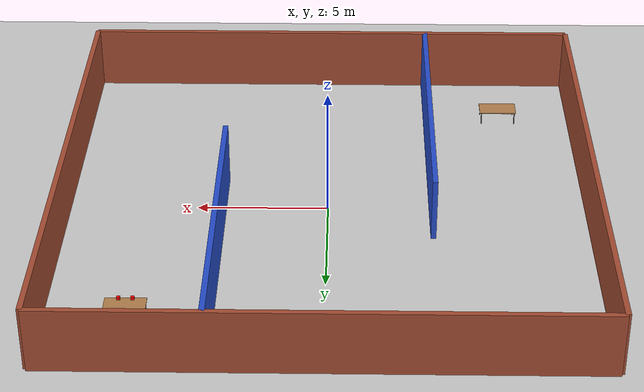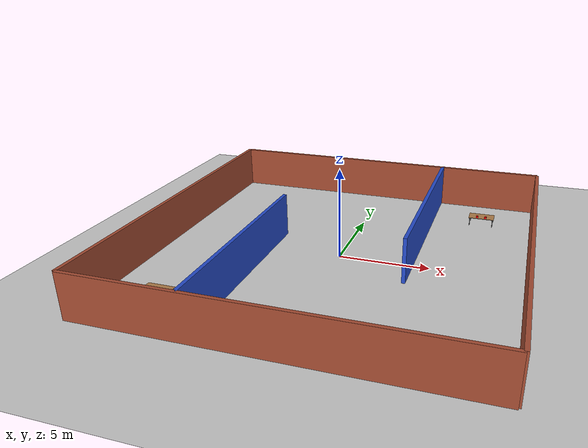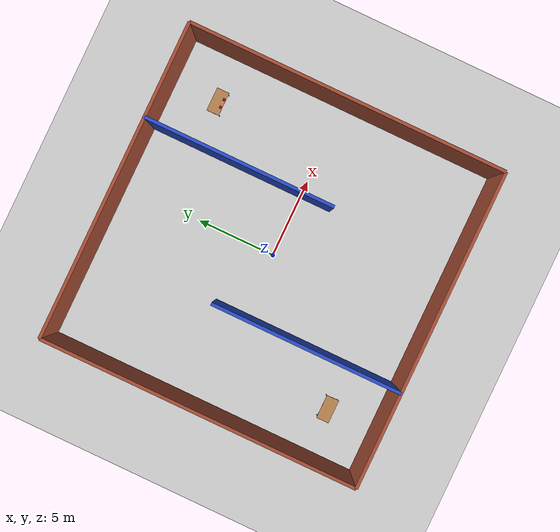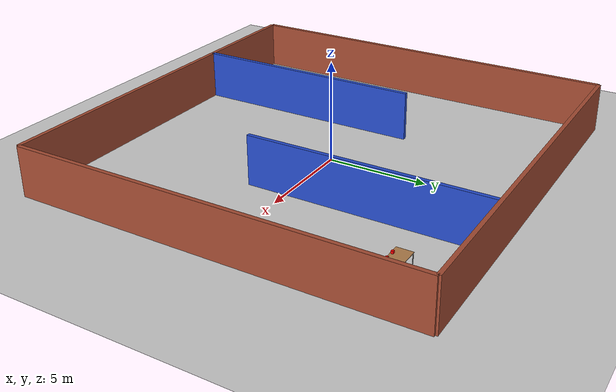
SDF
<sdf version="1.6">
 <world name="default">
  <light name="sun" type="directional">
   <pose>0 0 10 0 -0 0</pose>
   <diffuse>0.8 0.8 0.8 1</diffuse>
   <specular>0.2 0.2 0.2 1</specular>
   <attenuation>
    <range>1000</range>
    <constant>0.9</constant>
    <linear>0.01</linear>
    <quadratic>0.001</quadratic>
   </attenuation>
   <direction>-0.5 0.1 -0.9</direction>
  </light>
  <model name="ground_plane">
   <static>1</static>
   <link name="link">
    <collision name="collision">
     <geometry><plane><normal>0 0 1</normal><size>100 100</size></plane></geometry>
     <surface><friction><ode><mu>100</mu><mu2>50</mu2></ode></friction></surface>
    </collision>
    <visual name="visual">
     <cast_shadows>0</cast_shadows>
     <geometry><plane><normal>0 0 1</normal><size>100 100</size></plane></geometry>
     <material>
      <script><uri>file://media/materials/scripts/gazebo.material</uri><name>Gazebo/Grey</name></script>
     </material>
    </visual>
   </link>
  </model>
  <gravity>0 0 -9.8</gravity>
  <magnetic_field>6e-06 2.3e-05 -4.2e-05</magnetic_field>
  <atmosphere type="adiabatic"/>
  <physics name="default_physics" default="0" type="ode">
   <max_step_size>0.001</max_step_size>
   <real_time_factor>1</real_time_factor>
   <real_time_update_rate>1000</real_time_update_rate>
  </physics>
  <scene><ambient>0.4 0.4 0.4 1</ambient><background>0.7 0.7 0.7 1</background><shadows>1</shadows></scene>
  <spherical_coordinates>
   <surface_model>EARTH_WGS84</surface_model>
   <latitude_deg>0</latitude_deg>
   <longitude_deg>0</longitude_deg>
   <elevation>0</elevation>
   <heading_deg>0</heading_deg>
  </spherical_coordinates>
  <model name="inner_wall">
   <link name="Wall_1">
    <pose>-4 -4 0 0 0 -1.5707</pose>
    <inertial>
     <mass>1</mass>
     <inertia><ixx>1</ixx><ixy>0</ixy><ixz>0</ixz><iyy>1</iyy><iyz>0</iyz><izz>1</izz></inertia>
    </inertial>
    <visual name="Wall_1_Visual">
     <pose>0 0 1.25 0 -0 0</pose>
     <geometry><box><size>12 0.2 2.5</size></box></geometry>
     <material>
      <script><uri>file://media/materials/scripts/gazebo.material</uri><name>Gazebo/Blue</name></script>
      <ambient>0 0 1 1</ambient>
      <shader type="pixel"><normal_map>__default__</normal_map></shader>
      <emissive>0 0 0.2 1</emissive>
      <diffuse>0 0 0 1</diffuse>
      <specular>0.1 0.2 0 1</specular>
     </material>
     <meta><layer>0</layer></meta>
    </visual>
    <collision name="Wall_1_Collision">
     <pose>0 0 1.25 0 -0 0</pose>
     <geometry><box><size>12 0.2 2.5</size></box></geometry>
     <surface>
      <friction>
       <ode><mu>1</mu><mu2>1</mu2><fdir1>0 0 0</fdir1><slip1>0</slip1><slip2>0</slip2></ode>
       <torsional>
        <coefficient>1</coefficient>
        <patch_radius>0</patch_radius>
        <surface_radius>0</surface_radius>
        <use_patch_radius>1</use_patch_radius>
        <ode><slip>0</slip></ode>
       </torsional>
      </friction>
      <bounce><restitution_coefficient>0</restitution_coefficient><threshold>1e+06</threshold></bounce>
      <contact>
       <collide_without_contact>0</collide_without_contact>
       <collide_without_contact_bitmask>1</collide_without_contact_bitmask>
       <collide_bitmask>1</collide_bitmask>
       <ode>
        <soft_cfm>0</soft_cfm>
        <soft_erp>0.2</soft_erp>
        <kp>1e+13</kp>
        <kd>1</kd>
        <max_vel>0.01</max_vel>
        <min_depth>0</min_depth>
       </ode>
       <bullet>
        <split_impulse>1</split_impulse>
        <split_impulse_penetration_threshold>-0.01</split_impulse_penetration_threshold>
        <soft_cfm>0</soft_cfm>
        <soft_erp>0.2</soft_erp>
        <kp>1e+13</kp>
        <kd>1</kd>
       </bullet>
      </contact>
     </surface>
    </collision>
   </link>
   <link name="Wall_3">
    <pose>4 4 0 0 -0 1.5707</pose>
    <inertial>
     <mass>1</mass>
     <inertia><ixx>1</ixx><ixy>0</ixy><ixz>0</ixz><iyy>1</iyy><iyz>0</iyz><izz>1</izz></inertia>
    </inertial>
    <visual name="Wall_3_Visual">
     <pose>0 0 1.25 0 -0 0</pose>
     <geometry><box><size>12 0.2 2.5</size></box></geometry>
     <material>
      <script><uri>file://media/materials/scripts/gazebo.material</uri><name>Gazebo/Blue</name></script>
      <ambient>0 0 1 1</ambient>
      <shader type="pixel"><normal_map>__default__</normal_map></shader>
      <emissive>0 0 0.2 1</emissive>
      <diffuse>0 0 0 1</diffuse>
      <specular>0.1 0.2 0 1</specular>
     </material>
     <meta><layer>0</layer></meta>
    </visual>
    <collision name="Wall_3_Collision">
     <pose>0 0 1.25 0 -0 0</pose>
     <geometry><box><size>12 0.2 2.5</size></box></geometry>
     <surface>
      <friction>
       <ode><mu>1</mu><mu2>1</mu2><fdir1>0 0 0</fdir1><slip1>0</slip1><slip2>0</slip2></ode>
       <torsional>
        <coefficient>1</coefficient>
        <patch_radius>0</patch_radius>
        <surface_radius>0</surface_radius>
        <use_patch_radius>1</use_patch_radius>
        <ode><slip>0</slip></ode>
       </torsional>
      </friction>
      <bounce><restitution_coefficient>0</restitution_coefficient><threshold>1e+06</threshold></bounce>
      <contact>
       <collide_without_contact>0</collide_without_contact>
       <collide_without_contact_bitmask>1</collide_without_contact_bitmask>
       <collide_bitmask>1</collide_bitmask>
       <ode>
        <soft_cfm>0</soft_cfm>
        <soft_erp>0.2</soft_erp>
        <kp>1e+13</kp>
        <kd>1</kd>
        <max_vel>0.01</max_vel>
        <min_depth>0</min_depth>
       </ode>
       <bullet>
        <split_impulse>1</split_impulse>
        <split_impulse_penetration_threshold>-0.01</split_impulse_penetration_threshold>
        <soft_cfm>0</soft_cfm>
        <soft_erp>0.2</soft_erp>
        <kp>1e+13</kp>
        <kd>1</kd>
       </bullet>
      </contact>
     </surface>
    </collision>
   </link>
   <static>1</static>
  </model>
  <model name="cube_final">
   <link name="link">
    <inertial>
     <mass>1</mass>
     <inertia>
      <ixx>0.166667</ixx>
      <ixy>0</ixy>
      <ixz>0</ixz>
      <iyy>0.166667</iyy>
      <iyz>0</iyz>
      <izz>0.166667</izz>
     </inertia>
    </inertial>
    <visual name="visual">
     <geometry><box><size>0.12 0.12 0.12</size></box></geometry>
     <material>
      <script><name>Gazebo/Grey</name><uri>file://media/materials/scripts/gazebo.material</uri></script>
      <shader type="pixel"><normal_map>__default__</normal_map></shader>
      <ambient>1 0 0 1</ambient>
      <diffuse>0 0 0 1</diffuse>
      <specular>0.1 0.2 0 1</specular>
      <emissive>0 0 0 1</emissive>
     </material>
    </visual>
    <collision name="collision">
     <geometry><box><size>0.12 0.12 0.12</size></box></geometry>
     <surface>
      <friction>
       <ode><mu>1</mu><mu2>1</mu2><fdir1>0 0 0</fdir1><slip1>0</slip1><slip2>0</slip2></ode>
       <torsional>
        <coefficient>1</coefficient>
        <patch_radius>0</patch_radius>
        <surface_radius>0</surface_radius>
        <use_patch_radius>1</use_patch_radius>
        <ode><slip>0</slip></ode>
       </torsional>
      </friction>
      <bounce><restitution_coefficient>0</restitution_coefficient><threshold>1e+06</threshold></bounce>
      <contact>
       <collide_without_contact>0</collide_without_contact>
       <collide_without_contact_bitmask>1</collide_without_contact_bitmask>
       <collide_bitmask>1</collide_bitmask>
       <ode>
        <soft_cfm>0</soft_cfm>
        <soft_erp>0.2</soft_erp>
        <kp>1e+13</kp>
        <kd>1</kd>
        <max_vel>0.01</max_vel>
        <min_depth>0</min_depth>
       </ode>
       <bullet>
        <split_impulse>1</split_impulse>
        <split_impulse_penetration_threshold>-0.01</split_impulse_penetration_threshold>
        <soft_cfm>0</soft_cfm>
        <soft_erp>0.2</soft_erp>
        <kp>1e+13</kp>
        <kd>1</kd>
       </bullet>
      </contact>
     </surface>
    </collision>
   </link>
   <static>0</static>
   <pose>7.25 6.7 0.575 0 0 -7.3e-05</pose>
  </model>
  <model name="cube_final_0">
   <link name="link">
    <inertial>
     <mass>1</mass>
     <inertia>
      <ixx>0.166667</ixx>
      <ixy>0</ixy>
      <ixz>0</ixz>
      <iyy>0.166667</iyy>
      <iyz>0</iyz>
      <izz>0.166667</izz>
     </inertia>
    </inertial>
    <visual name="visual">
     <geometry><box><size>0.12 0.12 0.12</size></box></geometry>
     <material>
      <script><name>Gazebo/Grey</name><uri>file://media/materials/scripts/gazebo.material</uri></script>
      <shader type="pixel"><normal_map>__default__</normal_map></shader>
      <ambient>1 0 0 1</ambient>
      <diffuse>0 0 0 1</diffuse>
      <specular>0.1 0.2 0 1</specular>
      <emissive>0 0 0 1</emissive>
     </material>
    </visual>
    <collision name="collision">
     <geometry><box><size>0.12 0.12 0.12</size></box></geometry>
     <surface>
      <friction>
       <ode><mu>1</mu><mu2>1</mu2><fdir1>0 0 0</fdir1><slip1>0</slip1><slip2>0</slip2></ode>
       <torsional>
        <coefficient>1</coefficient>
        <patch_radius>0</patch_radius>
        <surface_radius>0</surface_radius>
        <use_patch_radius>1</use_patch_radius>
        <ode><slip>0</slip></ode>
       </torsional>
      </friction>
      <bounce><restitution_coefficient>0</restitution_coefficient><threshold>1e+06</threshold></bounce>
      <contact>
       <collide_without_contact>0</collide_without_contact>
       <collide_without_contact_bitmask>1</collide_without_contact_bitmask>
       <collide_bitmask>1</collide_bitmask>
       <ode>
        <soft_cfm>0</soft_cfm>
        <soft_erp>0.2</soft_erp>
        <kp>1e+13</kp>
        <kd>1</kd>
        <max_vel>0.01</max_vel>
        <min_depth>0</min_depth>
       </ode>
       <bullet>
        <split_impulse>1</split_impulse>
        <split_impulse_penetration_threshold>-0.01</split_impulse_penetration_threshold>
        <soft_cfm>0</soft_cfm>
        <soft_erp>0.2</soft_erp>
        <kp>1e+13</kp>
        <kd>1</kd>
       </bullet>
      </contact>
     </surface>
    </collision>
   </link>
   <static>0</static>
   <pose>6.75 6.7 0.575 0 -0 0.00012</pose>
  </model>
  <model name="table_final">
   <link name="link">
    <inertial>
     <mass>1</mass>
     <inertia><ixx>1</ixx><ixy>0</ixy><ixz>0</ixz><iyy>1</iyy><iyz>0</iyz><izz>1</izz></inertia>
    </inertial>
    <visual name="visual1">
     <pose>0 0 0.5 0 -0 0</pose>
     <geometry><box><size>1.5 0.8 0.03</size></box></geometry>
     <material>
      <script><uri>file://media/materials/scripts/gazebo.material</uri><name>Gazebo/Wood</name></script>
      <shader type="pixel"><normal_map>__default__</normal_map></shader>
      <ambient>1 1 1 1</ambient>
      <diffuse>1 1 1 1</diffuse>
      <specular>0.2 0.2 0.2 1</specular>
      <emissive>0 0 0 1</emissive>
     </material>
    </visual>
    <visual name="front_left_leg">
     <pose>0.68 0.38 0.25 0 -0 0</pose>
     <geometry><cylinder><radius>0.02</radius><length>0.5</length></cylinder></geometry>
     <material>
      <script><uri>file://media/materials/scripts/gazebo.material</uri><name>Gazebo/Grey</name></script>
      <shader type="pixel"><normal_map>__default__</normal_map></shader>
      <ambient>0.3 0.3 0.3 1</ambient>
      <diffuse>0.7 0.7 0.7 1</diffuse>
      <specular>0.01 0.01 0.01 1</specular>
      <emissive>0 0 0 1</emissive>
     </material>
    </visual>
    <visual name="front_right_leg">
     <pose>0.68 -0.38 0.25 0 -0 0</pose>
     <geometry><cylinder><radius>0.02</radius><length>0.5</length></cylinder></geometry>
     <material>
      <script><uri>file://media/materials/scripts/gazebo.material</uri><name>Gazebo/Grey</name></script>
      <shader type="pixel"><normal_map>__default__</normal_map></shader>
      <ambient>0.3 0.3 0.3 1</ambient>
      <diffuse>0.7 0.7 0.7 1</diffuse>
      <specular>0.01 0.01 0.01 1</specular>
      <emissive>0 0 0 1</emissive>
     </material>
    </visual>
    <visual name="back_right_leg">
     <pose>-0.68 -0.38 0.25 0 -0 0</pose>
     <geometry><cylinder><radius>0.02</radius><length>0.5</length></cylinder></geometry>
     <material>
      <script><uri>file://media/materials/scripts/gazebo.material</uri><name>Gazebo/Grey</name></script>
      <shader type="pixel"><normal_map>__default__</normal_map></shader>
      <ambient>0.3 0.3 0.3 1</ambient>
      <diffuse>0.7 0.7 0.7 1</diffuse>
      <specular>0.01 0.01 0.01 1</specular>
      <emissive>0 0 0 1</emissive>
     </material>
    </visual>
    <visual name="back_left_leg">
     <pose>-0.68 0.38 0.25 0 -0 0</pose>
     <geometry><cylinder><radius>0.02</radius><length>0.5</length></cylinder></geometry>
     <material>
      <script><uri>file://media/materials/scripts/gazebo.material</uri><name>Gazebo/Grey</name></script>
      <shader type="pixel"><normal_map>__default__</normal_map></shader>
      <ambient>0.3 0.3 0.3 1</ambient>
      <diffuse>0.7 0.7 0.7 1</diffuse>
      <specular>0.01 0.01 0.01 1</specular>
      <emissive>0 0 0 1</emissive>
     </material>
    </visual>
    <collision name="surface">
     <pose>0 0 0.5 0 -0 0</pose>
     <geometry><box><size>1.5 0.8 0.03</size></box></geometry>
     <surface>
      <friction>
       <ode><mu>0.6</mu><mu2>0.6</mu2><fdir1>0 0 0</fdir1><slip1>0</slip1><slip2>0</slip2></ode>
       <torsional>
        <coefficient>1</coefficient>
        <patch_radius>0</patch_radius>
        <surface_radius>0</surface_radius>
        <use_patch_radius>1</use_patch_radius>
        <ode><slip>0</slip></ode>
       </torsional>
      </friction>
      <bounce><restitution_coefficient>0</restitution_coefficient><threshold>1e+06</threshold></bounce>
      <contact>
       <collide_without_contact>0</collide_without_contact>
       <collide_without_contact_bitmask>1</collide_without_contact_bitmask>
       <collide_bitmask>1</collide_bitmask>
       <ode>
        <soft_cfm>0</soft_cfm>
        <soft_erp>0.2</soft_erp>
        <kp>1e+13</kp>
        <kd>1</kd>
        <max_vel>0.01</max_vel>
        <min_depth>0</min_depth>
       </ode>
       <bullet>
        <split_impulse>1</split_impulse>
        <split_impulse_penetration_threshold>-0.01</split_impulse_penetration_threshold>
        <soft_cfm>0</soft_cfm>
        <soft_erp>0.2</soft_erp>
        <kp>1e+13</kp>
        <kd>1</kd>
       </bullet>
      </contact>
     </surface>
    </collision>
    <collision name="front_left_leg">
     <pose>0.68 0.38 0.25 0 -0 0</pose>
     <geometry><cylinder><radius>0.02</radius><length>0.5</length></cylinder></geometry>
     <surface>
      <friction>
       <ode><mu>1</mu><mu2>1</mu2><fdir1>0 0 0</fdir1><slip1>0</slip1><slip2>0</slip2></ode>
       <torsional>
        <coefficient>1</coefficient>
        <patch_radius>0</patch_radius>
        <surface_radius>0</surface_radius>
        <use_patch_radius>1</use_patch_radius>
        <ode><slip>0</slip></ode>
       </torsional>
      </friction>
      <bounce><restitution_coefficient>0</restitution_coefficient><threshold>1e+06</threshold></bounce>
      <contact>
       <collide_without_contact>0</collide_without_contact>
       <collide_without_contact_bitmask>1</collide_without_contact_bitmask>
       <collide_bitmask>1</collide_bitmask>
       <ode>
        <soft_cfm>0</soft_cfm>
        <soft_erp>0.2</soft_erp>
        <kp>1e+13</kp>
        <kd>1</kd>
        <max_vel>0.01</max_vel>
        <min_depth>0</min_depth>
       </ode>
       <bullet>
        <split_impulse>1</split_impulse>
        <split_impulse_penetration_threshold>-0.01</split_impulse_penetration_threshold>
        <soft_cfm>0</soft_cfm>
        <soft_erp>0.2</soft_erp>
        <kp>1e+13</kp>
        <kd>1</kd>
       </bullet>
      </contact>
     </surface>
    </collision>
    <collision name="front_right_leg">
     <pose>0.68 -0.38 0.25 0 -0 0</pose>
     <geometry><cylinder><radius>0.02</radius><length>0.5</length></cylinder></geometry>
     <surface>
      <friction>
       <ode><mu>1</mu><mu2>1</mu2><fdir1>0 0 0</fdir1><slip1>0</slip1><slip2>0</slip2></ode>
       <torsional>
        <coefficient>1</coefficient>
        <patch_radius>0</patch_radius>
        <surface_radius>0</surface_radius>
        <use_patch_radius>1</use_patch_radius>
        <ode><slip>0</slip></ode>
       </torsional>
      </friction>
      <bounce><restitution_coefficient>0</restitution_coefficient><threshold>1e+06</threshold></bounce>
      <contact>
       <collide_without_contact>0</collide_without_contact>
       <collide_without_contact_bitmask>1</collide_without_contact_bitmask>
       <collide_bitmask>1</collide_bitmask>
       <ode>
        <soft_cfm>0</soft_cfm>
        <soft_erp>0.2</soft_erp>
        <kp>1e+13</kp>
        <kd>1</kd>
        <max_vel>0.01</max_vel>
        <min_depth>0</min_depth>
       </ode>
       <bullet>
        <split_impulse>1</split_impulse>
        <split_impulse_penetration_threshold>-0.01</split_impulse_penetration_threshold>
        <soft_cfm>0</soft_cfm>
        <soft_erp>0.2</soft_erp>
        <kp>1e+13</kp>
        <kd>1</kd>
       </bullet>
      </contact>
     </surface>
    </collision>
    <collision name="back_right_leg">
     <pose>-0.68 -0.38 0.25 0 -0 0</pose>
     <geometry><cylinder><radius>0.02</radius><length>0.5</length></cylinder></geometry>
     <surface>
      <friction>
       <ode><mu>1</mu><mu2>1</mu2><fdir1>0 0 0</fdir1><slip1>0</slip1><slip2>0</slip2></ode>
       <torsional>
        <coefficient>1</coefficient>
        <patch_radius>0</patch_radius>
        <surface_radius>0</surface_radius>
        <use_patch_radius>1</use_patch_radius>
        <ode><slip>0</slip></ode>
       </torsional>
      </friction>
      <bounce><restitution_coefficient>0</restitution_coefficient><threshold>1e+06</threshold></bounce>
      <contact>
       <collide_without_contact>0</collide_without_contact>
       <collide_without_contact_bitmask>1</collide_without_contact_bitmask>
       <collide_bitmask>1</collide_bitmask>
       <ode>
        <soft_cfm>0</soft_cfm>
        <soft_erp>0.2</soft_erp>
        <kp>1e+13</kp>
        <kd>1</kd>
        <max_vel>0.01</max_vel>
        <min_depth>0</min_depth>
       </ode>
       <bullet>
        <split_impulse>1</split_impulse>
        <split_impulse_penetration_threshold>-0.01</split_impulse_penetration_threshold>
        <soft_cfm>0</soft_cfm>
        <soft_erp>0.2</soft_erp>
        <kp>1e+13</kp>
        <kd>1</kd>
       </bullet>
      </contact>
     </surface>
    </collision>
    <collision name="back_left_leg">
     <pose>-0.68 0.38 0.25 0 -0 0</pose>
     <geometry><cylinder><radius>0.02</radius><length>0.5</length></cylinder></geometry>
     <surface>
      <friction>
       <ode><mu>1</mu><mu2>1</mu2><fdir1>0 0 0</fdir1><slip1>0</slip1><slip2>0</slip2></ode>
       <torsional>
        <coefficient>1</coefficient>
        <patch_radius>0</patch_radius>
        <surface_radius>0</surface_radius>
        <use_patch_radius>1</use_patch_radius>
        <ode><slip>0</slip></ode>
       </torsional>
      </friction>
      <bounce><restitution_coefficient>0</restitution_coefficient><threshold>1e+06</threshold></bounce>
      <contact>
       <collide_without_contact>0</collide_without_contact>
       <collide_without_contact_bitmask>1</collide_without_contact_bitmask>
       <collide_bitmask>1</collide_bitmask>
       <ode>
        <soft_cfm>0</soft_cfm>
        <soft_erp>0.2</soft_erp>
        <kp>1e+13</kp>
        <kd>1</kd>
        <max_vel>0.01</max_vel>
        <min_depth>0</min_depth>
       </ode>
       <bullet>
        <split_impulse>1</split_impulse>
        <split_impulse_penetration_threshold>-0.01</split_impulse_penetration_threshold>
        <soft_cfm>0</soft_cfm>
        <soft_erp>0.2</soft_erp>
        <kp>1e+13</kp>
        <kd>1</kd>
       </bullet>
      </contact>
     </surface>
    </collision>
   </link>
   <static>1</static>
   <pose>7 7 0 0 -0 0</pose>
  </model>
  <model name="table_final_0">
   <link name="link">
    <inertial>
     <mass>1</mass>
     <inertia><ixx>1</ixx><ixy>0</ixy><ixz>0</ixz><iyy>1</iyy><iyz>0</iyz><izz>1</izz></inertia>
    </inertial>
    <visual name="visual1">
     <pose>0 0 0.5 0 -0 0</pose>
     <geometry><box><size>1.5 0.8 0.03</size></box></geometry>
     <material>
      <script><uri>file://media/materials/scripts/gazebo.material</uri><name>Gazebo/Wood</name></script>
      <shader type="pixel"><normal_map>__default__</normal_map></shader>
      <ambient>1 1 1 1</ambient>
      <diffuse>1 1 1 1</diffuse>
      <specular>0.2 0.2 0.2 1</specular>
      <emissive>0 0 0 1</emissive>
     </material>
    </visual>
    <visual name="front_left_leg">
     <pose>0.68 0.38 0.25 0 -0 0</pose>
     <geometry><cylinder><radius>0.02</radius><length>0.5</length></cylinder></geometry>
     <material>
      <script><uri>file://media/materials/scripts/gazebo.material</uri><name>Gazebo/Grey</name></script>
      <shader type="pixel"><normal_map>__default__</normal_map></shader>
      <ambient>0.3 0.3 0.3 1</ambient>
      <diffuse>0.7 0.7 0.7 1</diffuse>
      <specular>0.01 0.01 0.01 1</specular>
      <emissive>0 0 0 1</emissive>
     </material>
    </visual>
    <visual name="front_right_leg">
     <pose>0.68 -0.38 0.25 0 -0 0</pose>
     <geometry><cylinder><radius>0.02</radius><length>0.5</length></cylinder></geometry>
     <material>
      <script><uri>file://media/materials/scripts/gazebo.material</uri><name>Gazebo/Grey</name></script>
      <shader type="pixel"><normal_map>__default__</normal_map></shader>
      <ambient>0.3 0.3 0.3 1</ambient>
      <diffuse>0.7 0.7 0.7 1</diffuse>
      <specular>0.01 0.01 0.01 1</specular>
      <emissive>0 0 0 1</emissive>
     </material>
    </visual>
    <visual name="back_right_leg">
     <pose>-0.68 -0.38 0.25 0 -0 0</pose>
     <geometry><cylinder><radius>0.02</radius><length>0.5</length></cylinder></geometry>
     <material>
      <script><uri>file://media/materials/scripts/gazebo.material</uri><name>Gazebo/Grey</name></script>
      <shader type="pixel"><normal_map>__default__</normal_map></shader>
      <ambient>0.3 0.3 0.3 1</ambient>
      <diffuse>0.7 0.7 0.7 1</diffuse>
      <specular>0.01 0.01 0.01 1</specular>
      <emissive>0 0 0 1</emissive>
     </material>
    </visual>
    <visual name="back_left_leg">
     <pose>-0.68 0.38 0.25 0 -0 0</pose>
     <geometry><cylinder><radius>0.02</radius><length>0.5</length></cylinder></geometry>
     <material>
      <script><uri>file://media/materials/scripts/gazebo.material</uri><name>Gazebo/Grey</name></script>
      <shader type="pixel"><normal_map>__default__</normal_map></shader>
      <ambient>0.3 0.3 0.3 1</ambient>
      <diffuse>0.7 0.7 0.7 1</diffuse>
      <specular>0.01 0.01 0.01 1</specular>
      <emissive>0 0 0 1</emissive>
     </material>
    </visual>
    <collision name="surface">
     <pose>0 0 0.5 0 -0 0</pose>
     <geometry><box><size>1.5 0.8 0.03</size></box></geometry>
     <surface>
      <friction>
       <ode><mu>0.6</mu><mu2>0.6</mu2><fdir1>0 0 0</fdir1><slip1>0</slip1><slip2>0</slip2></ode>
       <torsional>
        <coefficient>1</coefficient>
        <patch_radius>0</patch_radius>
        <surface_radius>0</surface_radius>
        <use_patch_radius>1</use_patch_radius>
        <ode><slip>0</slip></ode>
       </torsional>
      </friction>
      <bounce><restitution_coefficient>0</restitution_coefficient><threshold>1e+06</threshold></bounce>
      <contact>
       <collide_without_contact>0</collide_without_contact>
       <collide_without_contact_bitmask>1</collide_without_contact_bitmask>
       <collide_bitmask>1</collide_bitmask>
       <ode>
        <soft_cfm>0</soft_cfm>
        <soft_erp>0.2</soft_erp>
        <kp>1e+13</kp>
        <kd>1</kd>
        <max_vel>0.01</max_vel>
        <min_depth>0</min_depth>
       </ode>
       <bullet>
        <split_impulse>1</split_impulse>
        <split_impulse_penetration_threshold>-0.01</split_impulse_penetration_threshold>
        <soft_cfm>0</soft_cfm>
        <soft_erp>0.2</soft_erp>
        <kp>1e+13</kp>
        <kd>1</kd>
       </bullet>
      </contact>
     </surface>
    </collision>
    <collision name="front_left_leg">
     <pose>0.68 0.38 0.25 0 -0 0</pose>
     <geometry><cylinder><radius>0.02</radius><length>0.5</length></cylinder></geometry>
     <surface>
      <friction>
       <ode><mu>1</mu><mu2>1</mu2><fdir1>0 0 0</fdir1><slip1>0</slip1><slip2>0</slip2></ode>
       <torsional>
        <coefficient>1</coefficient>
        <patch_radius>0</patch_radius>
        <surface_radius>0</surface_radius>
        <use_patch_radius>1</use_patch_radius>
        <ode><slip>0</slip></ode>
       </torsional>
      </friction>
      <bounce><restitution_coefficient>0</restitution_coefficient><threshold>1e+06</threshold></bounce>
      <contact>
       <collide_without_contact>0</collide_without_contact>
       <collide_without_contact_bitmask>1</collide_without_contact_bitmask>
       <collide_bitmask>1</collide_bitmask>
       <ode>
        <soft_cfm>0</soft_cfm>
        <soft_erp>0.2</soft_erp>
        <kp>1e+13</kp>
        <kd>1</kd>
        <max_vel>0.01</max_vel>
        <min_depth>0</min_depth>
       </ode>
       <bullet>
        <split_impulse>1</split_impulse>
        <split_impulse_penetration_threshold>-0.01</split_impulse_penetration_threshold>
        <soft_cfm>0</soft_cfm>
        <soft_erp>0.2</soft_erp>
        <kp>1e+13</kp>
        <kd>1</kd>
       </bullet>
      </contact>
     </surface>
    </collision>
    <collision name="front_right_leg">
     <pose>0.68 -0.38 0.25 0 -0 0</pose>
     <geometry><cylinder><radius>0.02</radius><length>0.5</length></cylinder></geometry>
     <surface>
      <friction>
       <ode><mu>1</mu><mu2>1</mu2><fdir1>0 0 0</fdir1><slip1>0</slip1><slip2>0</slip2></ode>
       <torsional>
        <coefficient>1</coefficient>
        <patch_radius>0</patch_radius>
        <surface_radius>0</surface_radius>
        <use_patch_radius>1</use_patch_radius>
        <ode><slip>0</slip></ode>
       </torsional>
      </friction>
      <bounce><restitution_coefficient>0</restitution_coefficient><threshold>1e+06</threshold></bounce>
      <contact>
       <collide_without_contact>0</collide_without_contact>
       <collide_without_contact_bitmask>1</collide_without_contact_bitmask>
       <collide_bitmask>1</collide_bitmask>
       <ode>
        <soft_cfm>0</soft_cfm>
        <soft_erp>0.2</soft_erp>
        <kp>1e+13</kp>
        <kd>1</kd>
        <max_vel>0.01</max_vel>
        <min_depth>0</min_depth>
       </ode>
       <bullet>
        <split_impulse>1</split_impulse>
        <split_impulse_penetration_threshold>-0.01</split_impulse_penetration_threshold>
        <soft_cfm>0</soft_cfm>
        <soft_erp>0.2</soft_erp>
        <kp>1e+13</kp>
        <kd>1</kd>
       </bullet>
      </contact>
     </surface>
    </collision>
    <collision name="back_right_leg">
     <pose>-0.68 -0.38 0.25 0 -0 0</pose>
     <geometry><cylinder><radius>0.02</radius><length>0.5</length></cylinder></geometry>
     <surface>
      <friction>
       <ode><mu>1</mu><mu2>1</mu2><fdir1>0 0 0</fdir1><slip1>0</slip1><slip2>0</slip2></ode>
       <torsional>
        <coefficient>1</coefficient>
        <patch_radius>0</patch_radius>
        <surface_radius>0</surface_radius>
        <use_patch_radius>1</use_patch_radius>
        <ode><slip>0</slip></ode>
       </torsional>
      </friction>
      <bounce><restitution_coefficient>0</restitution_coefficient><threshold>1e+06</threshold></bounce>
      <contact>
       <collide_without_contact>0</collide_without_contact>
       <collide_without_contact_bitmask>1</collide_without_contact_bitmask>
       <collide_bitmask>1</collide_bitmask>
       <ode>
        <soft_cfm>0</soft_cfm>
        <soft_erp>0.2</soft_erp>
        <kp>1e+13</kp>
        <kd>1</kd>
        <max_vel>0.01</max_vel>
        <min_depth>0</min_depth>
       </ode>
       <bullet>
        <split_impulse>1</split_impulse>
        <split_impulse_penetration_threshold>-0.01</split_impulse_penetration_threshold>
        <soft_cfm>0</soft_cfm>
        <soft_erp>0.2</soft_erp>
        <kp>1e+13</kp>
        <kd>1</kd>
       </bullet>
      </contact>
     </surface>
    </collision>
    <collision name="back_left_leg">
     <pose>-0.68 0.38 0.25 0 -0 0</pose>
     <geometry><cylinder><radius>0.02</radius><length>0.5</length></cylinder></geometry>
     <surface>
      <friction>
       <ode><mu>1</mu><mu2>1</mu2><fdir1>0 0 0</fdir1><slip1>0</slip1><slip2>0</slip2></ode>
       <torsional>
        <coefficient>1</coefficient>
        <patch_radius>0</patch_radius>
        <surface_radius>0</surface_radius>
        <use_patch_radius>1</use_patch_radius>
        <ode><slip>0</slip></ode>
       </torsional>
      </friction>
      <bounce><restitution_coefficient>0</restitution_coefficient><threshold>1e+06</threshold></bounce>
      <contact>
       <collide_without_contact>0</collide_without_contact>
       <collide_without_contact_bitmask>1</collide_without_contact_bitmask>
       <collide_bitmask>1</collide_bitmask>
       <ode>
        <soft_cfm>0</soft_cfm>
        <soft_erp>0.2</soft_erp>
        <kp>1e+13</kp>
        <kd>1</kd>
        <max_vel>0.01</max_vel>
        <min_depth>0</min_depth>
       </ode>
       <bullet>
        <split_impulse>1</split_impulse>
        <split_impulse_penetration_threshold>-0.01</split_impulse_penetration_threshold>
        <soft_cfm>0</soft_cfm>
        <soft_erp>0.2</soft_erp>
        <kp>1e+13</kp>
        <kd>1</kd>
       </bullet>
      </contact>
     </surface>
    </collision>
   </link>
   <static>1</static>
   <pose>-7 -7 0 0 -0 0</pose>
  </model>
  <model name="try1_0">
   <link name="Wall_0">
    <collision name="Wall_0_Collision">
     <geometry><box><size>20 0.2 2.5</size></box></geometry>
     <pose>0 0 1.25 0 -0 0</pose>
    </collision>
    <visual name="Wall_0_Visual">
     <pose>0 0 1.25 0 -0 0</pose>
     <geometry><box><size>20 0.2 2.5</size></box></geometry>
     <material>
      <script><uri>file://media/materials/scripts/gazebo.material</uri><name>Gazebo/Bricks</name></script>
      <ambient>1 1 1 1</ambient>
     </material>
     <meta><layer>0</layer></meta>
    </visual>
    <pose>0 10 0 0 -0 0</pose>
   </link>
   <link name="Wall_1">
    <collision name="Wall_1_Collision">
     <geometry><box><size>20 0.2 2.5</size></box></geometry>
     <pose>0 0 1.25 0 -0 0</pose>
    </collision>
    <visual name="Wall_1_Visual">
     <pose>0 0 1.25 0 -0 0</pose>
     <geometry><box><size>20 0.2 2.5</size></box></geometry>
     <material>
      <script><uri>file://media/materials/scripts/gazebo.material</uri><name>Gazebo/Bricks</name></script>
      <ambient>1 1 1 1</ambient>
     </material>
     <meta><layer>0</layer></meta>
    </visual>
    <pose>10 0 0 0 -0 -1.5707</pose>
   </link>
   <link name="Wall_2">
    <collision name="Wall_2_Collision">
     <geometry><box><size>20 0.2 2.5</size></box></geometry>
     <pose>0 0 1.25 0 -0 0</pose>
    </collision>
    <visual name="Wall_2_Visual">
     <pose>0 0 1.25 0 -0 0</pose>
     <geometry><box><size>20 0.2 2.5</size></box></geometry>
     <material>
      <script><uri>file://media/materials/scripts/gazebo.material</uri><name>Gazebo/Bricks</name></script>
      <ambient>1 1 1 1</ambient>
     </material>
     <meta><layer>0</layer></meta>
    </visual>
    <pose>0 -10 0 0 -0 3.14159</pose>
   </link>
   <link name="Wall_3">
    <collision name="Wall_3_Collision">
     <geometry><box><size>20 0.2 2.5</size></box></geometry>
     <pose>0 0 1.25 0 -0 0</pose>
    </collision>
    <visual name="Wall_3_Visual">
     <pose>0 0 1.25 0 -0 0</pose>
     <geometry><box><size>20 0.2 2.5</size></box></geometry>
     <material>
      <script><uri>file://media/materials/scripts/gazebo.material</uri><name>Gazebo/Bricks</name></script>
      <ambient>1 1 1 1</ambient>
     </material>
     <meta><layer>0</layer></meta>
    </visual>
    <pose>-10 0 0 0 -0 1.5707</pose>
   </link>
   <static>1</static>
  </model>
 </world>
</sdf>
